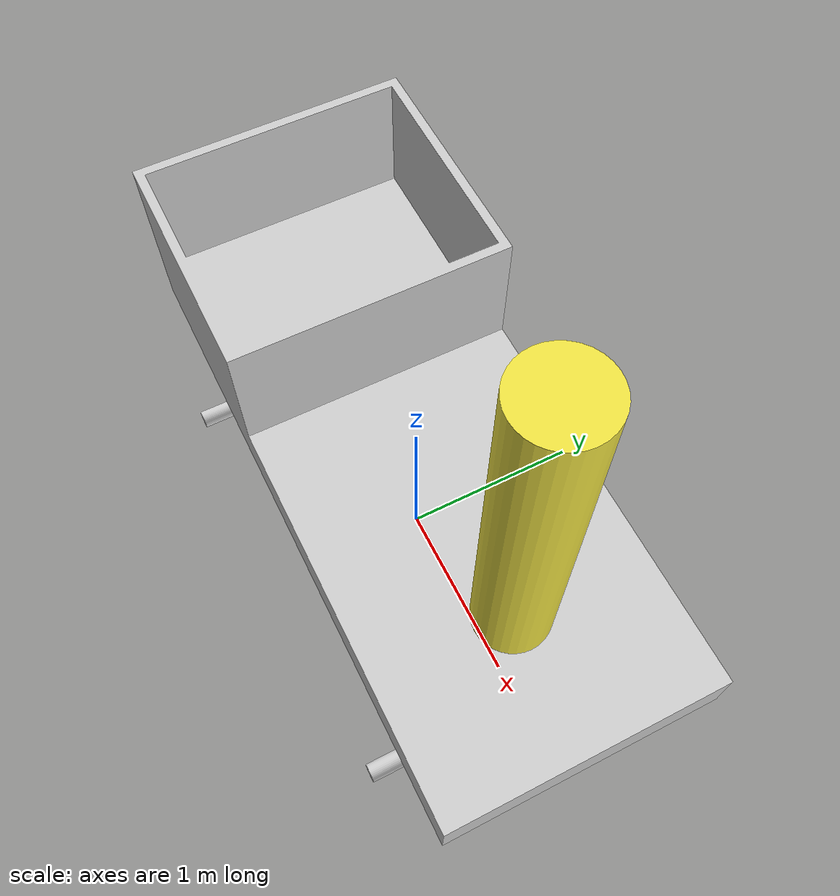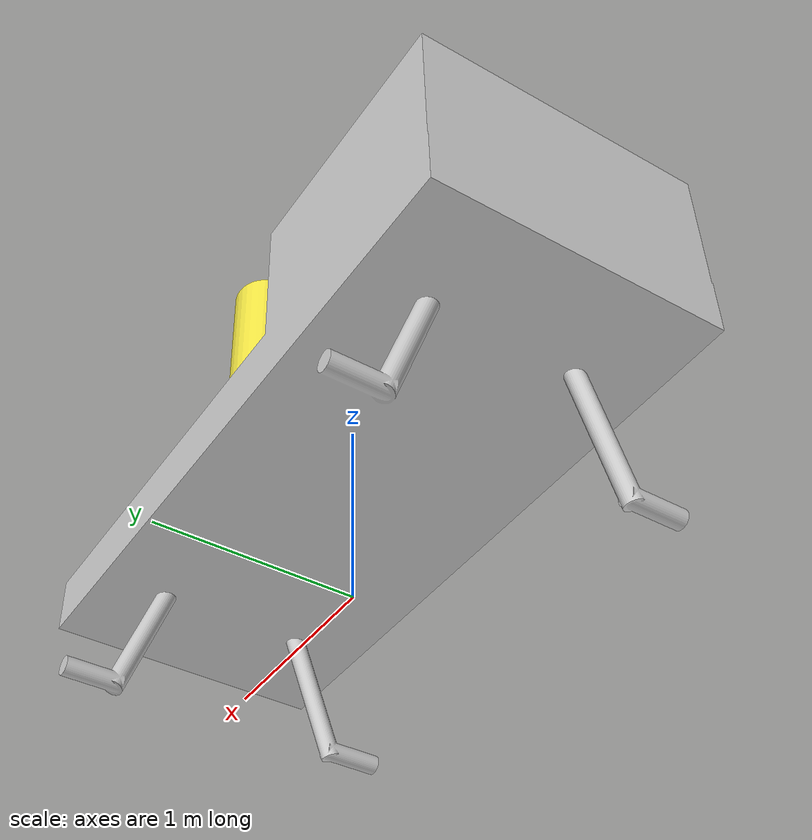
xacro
<?xml version="1.0"?>
<robot xmlns:xacro="http://wiki.ros.org/xacro">

  <xacro:include filename="$(find rover_description)/urdf/utils/utils.urdf.xacro"/>

  <link name="base_footprint"/>

  <joint name="base_footprint_joint" type="fixed">
    <origin xyz="0 0 0.73272" rpy="0 0 0"/>
    <parent link="base_footprint"/>
    <child  link="base_link"/>
  </joint>

  <link name="base_link"/>

  <joint name="base_to_chassis_joint" type="fixed">
    <origin xyz="0 0 0" rpy="0 0 -1.5708"/>
    <parent link="base_link"/>
    <child  link="chassis_link"/>
  </joint>

  <link name="chassis_link">
    <visual name="Base">
      <material name="Material">
        <color rgba="0.8 0.8 0.8 1.0"/>
      </material>
      <origin xyz="0 0 0" rpy="0 0 0"/>
      <geometry>
        <mesh filename="package://rover_description/meshes/dae/Cylinder.011.dae" scale="1 1 1"/>
      </geometry>
    </visual>

    <collision name="Base_collision">
      <origin xyz="0 0 -0.06251" rpy="0 0 0"/>
      <geometry>
        <box size="1.5 3.5 0.45"/>
      </geometry>
    </collision>
    <collision name="Base_collision_front_wall">
      <origin xyz="0 -0.47508 0.51045" rpy="0 0 0"/>
      <geometry><box size="1.5 0.05 0.70"/></geometry>
    </collision>
    <collision name="Base_collision_rear_wall">
      <origin xyz="0 -1.72 0.51045" rpy="0 0 0"/>
      <geometry><box size="1.5 0.05 0.70"/></geometry>
    </collision>
    <collision name="Base_collision_left_wall">
      <origin xyz="-0.725 -1.1 0.51045" rpy="0 0 1.5708"/>
      <geometry><box size="1.2 0.05 0.70"/></geometry>
    </collision>
    <collision name="Base_collision_right_wall">
      <origin xyz="0.725 -1.1 0.51045" rpy="0 0 1.5708"/>
      <geometry><box size="1.2 0.05 0.70"/></geometry>
    </collision>

    <inertial>
      <origin xyz="0 -0.11566 0.05374" rpy="0 0 0"/>
      <mass value="70.0"/>
      <inertia ixx="93.95663" ixy="-0.00000" ixz="0.00000"
               iyy="39.45127" iyz="22.95778"
               izz="78.82027"/>
    </inertial>
  </link>

  <joint name="pedestal_link_joint" type="fixed">
    <origin xyz="0 1.0 0.16045" rpy="0 0 0"/>
    <parent link="chassis_link"/>
    <child  link="pedestal_link"/>
  </joint>

  <link name="pedestal_link">
    <visual name="pedestal">
      <material name="None"/>
      <origin xyz="0 0 0" rpy="0 0 0"/>
      <geometry>
        <mesh filename="package://rover_description/meshes/dae/Cylinder.dae" scale="1 1 1"/>
      </geometry>
    </visual>
    <collision name="pedestal_collision">
      <origin xyz="0 0 1.00088" rpy="0 0 0"/>
      <geometry>
        <cylinder radius="0.2" length="2.0"/>
      </geometry>
    </collision>
    <inertial>
      <origin xyz="0 0 1.0" rpy="0 0 0"/>
      <mass value="5.0"/>
      <inertia ixx="1.71635" ixy="0" ixz="0"
               iyy="1.71635" iyz="0"
               izz="0.09936"/>
    </inertial>
  </link>

</robot>
